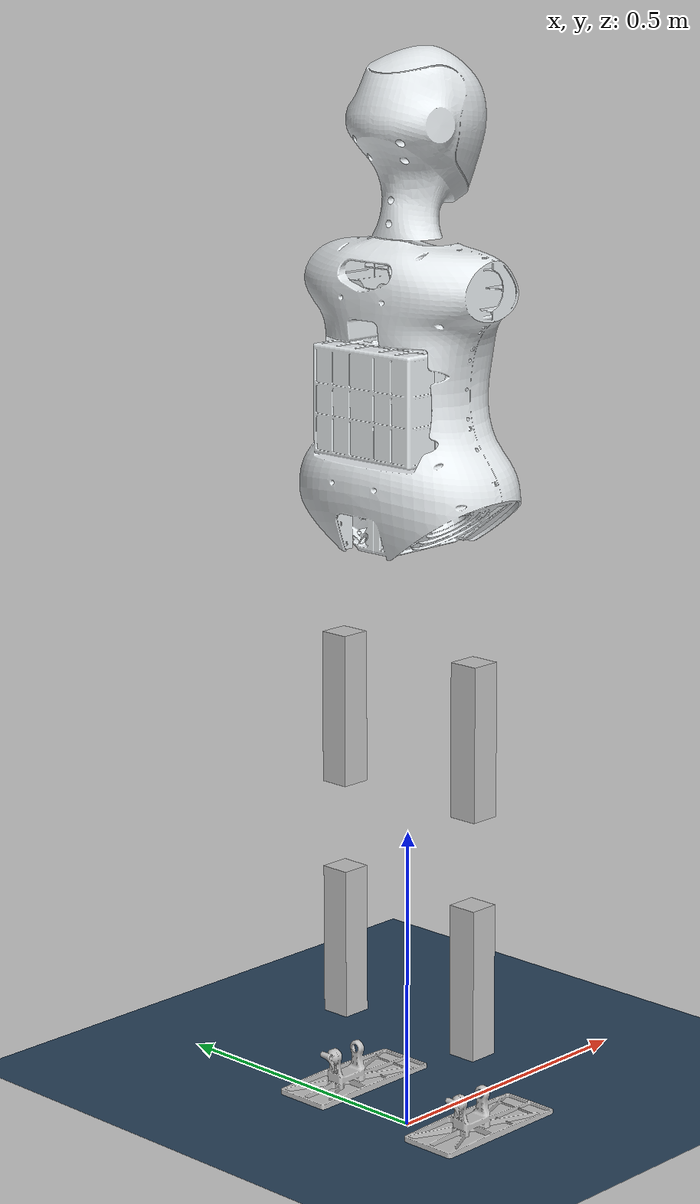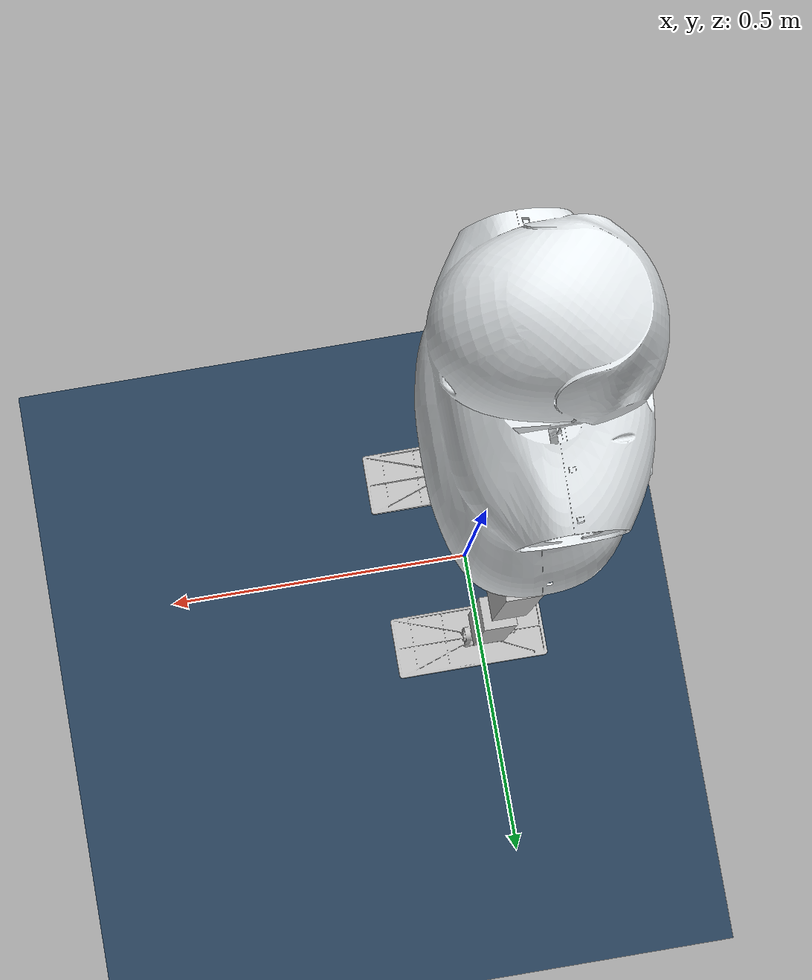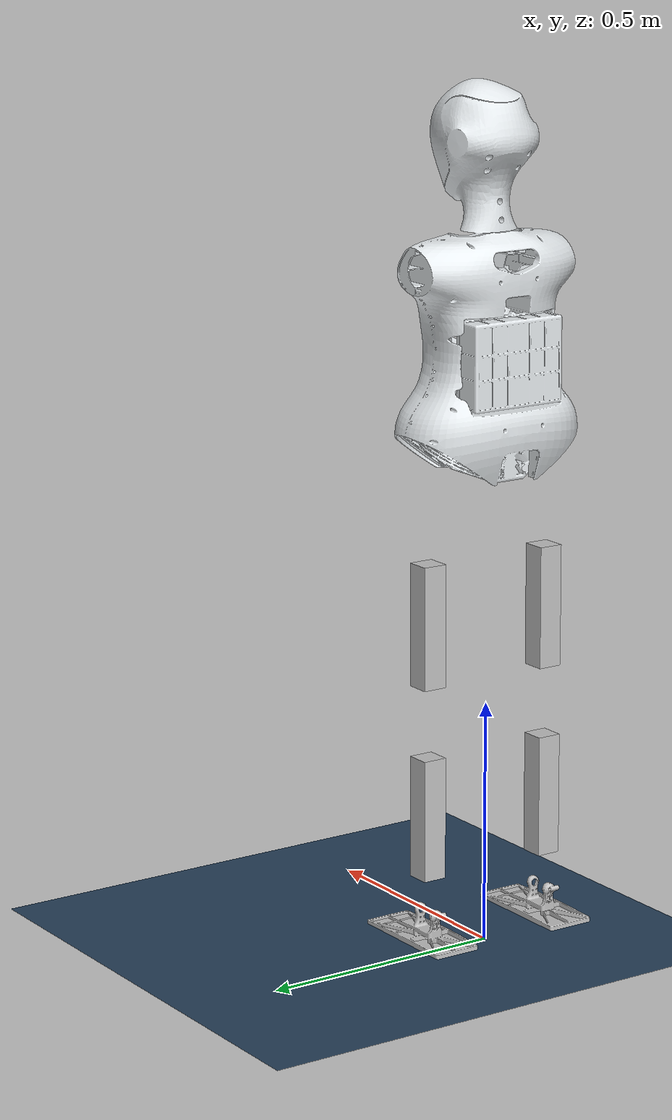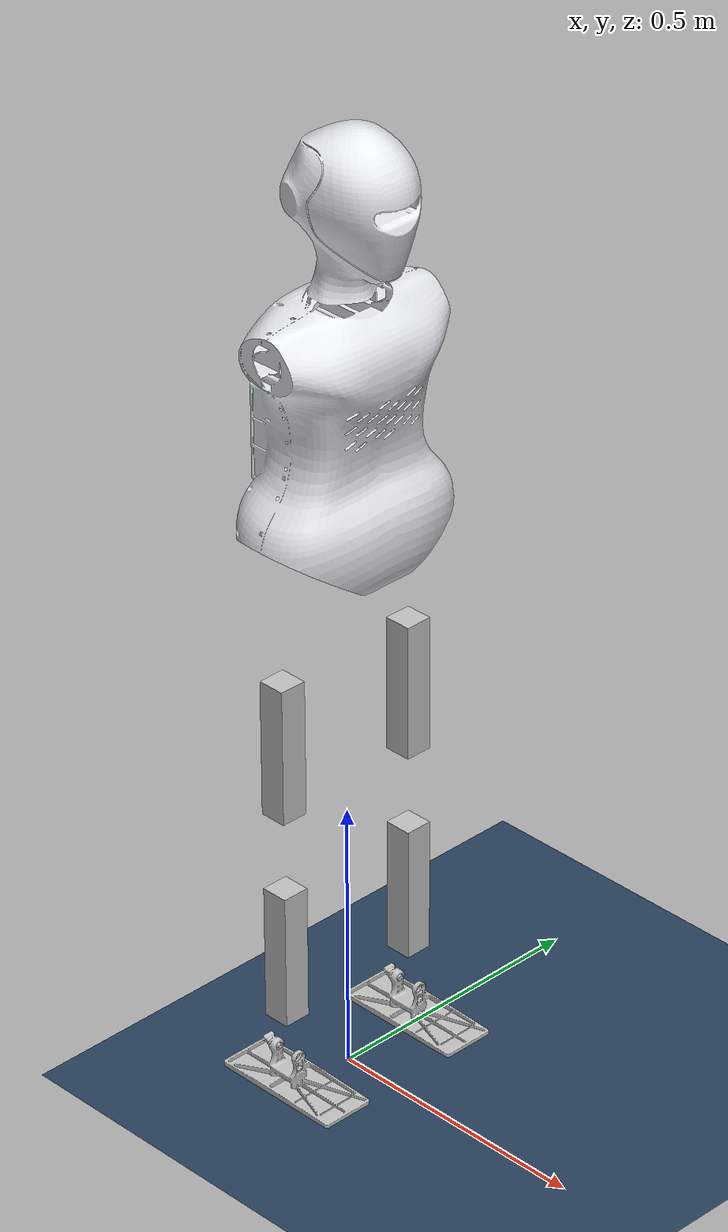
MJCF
<mujoco model="L1">
  <compiler angle="radian" meshdir="../meshes_L1/" />
  <option timestep="0.001" />

  <visual>
    <map force="0.1" zfar="30" />
    <rgba haze="0.15 0.25 0.35 1" />
    <global offwidth="2560" offheight="1440" elevation="-20" azimuth="120" />
  </visual>

  <statistic center="0 0 0.7" />
  <compiler angle="radian" autolimits="true" />

  <asset>
    <texture type="skybox" builtin="gradient" rgb1=".3 .5 .7" rgb2="0 0 0" width="32" height="512" />
    <texture name="body" type="cube" builtin="flat" mark="cross" width="128" height="128"
      rgb1="0.8 0.6 0.4" rgb2="0.8 0.6 0.4" markrgb="1 1 1" random="0.01" />
    <material name="body" texture="body" texuniform="true" rgba="0.8 0.6 .4 1" />
    <texture name="grid" type="2d" builtin="checker" width="512" height="512" rgb1=".1 .2 .3"
      rgb2=".2 .3 .4" />
    <material name="grid" texture="grid" texrepeat="1 1" texuniform="true" reflectance=".2" />
  </asset>

  <asset>
    <mesh name="base_link" file="base_link.STL" />
    <mesh name="LeftLeg_Link_06" file="LL6.STL" />
    <mesh name="RightLeg_Link_06" file="LR6.STL" />
  </asset>
  <worldbody>
    <geom name="floor" size="0 0 .05" type="plane" material="grid" condim="3" contype="3" conaffinity="3" solref="0.0002 0.1"/>
    <light name="spotlight" mode="targetbodycom" target="base_link" diffuse=".8 .8 .8" specular="0.3 0.3 0.3" pos="0 -6 4" cutoff="30"/>

    <body name="base_link" pos="0 0 1.1">
      <inertial pos="-0.00059405 -0.00012115 0.100099" quat="0.99831 0.000331026 0.0579693 -0.00404277"
        mass="11.0685" diaginertia="0.582951 0.537578 0.0953701"/>
      <light name="top" pos="0 0 2" mode="trackcom" />
      <camera name="back" pos="-3 0 1" xyaxes="0 -1 0 1 0 2" mode="trackcom" />
      <camera name="side" pos="0 -3 1" xyaxes="1 0 0 0 1 2" mode="trackcom" />
      <freejoint name="root" />
      <geom type="mesh" rgba="0.898039 0.917647 0.929412 1" mesh="base_link" contype="0"
        conaffinity="0" solimp=".9 .99 .003" />
      <site name='imu' size='0.01' pos='0.0 0 0.0' />

      <body name="leg_l1_link" pos="0 0.090386 -0.091358">
        <inertial pos="0.00402267 0.0229258 -0.0327414" quat="0.189769 0.681166 0.449136 0.546148"
          mass="0.337583" diaginertia="0.0010967 0.00076856 0.000568251"/>
        <joint name="leg_l1_joint" pos="0 0 0" axis="0 -0.57358 0.81915" limited="true" range="-1.815 1.728" />
        <body name="leg_l2_link" pos="0 0.049614 -0.070857">
          <inertial pos="0.00639226 9.576e-05 -0.0033657" quat="0.9972 0.00211166 0.0747515 -0.000227369"
            mass="2.05978" diaginertia="0.00332488 0.00275554 0.0023486"/>
          <joint name="leg_l2_joint" pos="0 0 0" axis="1 0 0" limited="true" range="-1.134 1.309" />
          <body name="leg_l3_link" pos="0 0 -0.075">
            <inertial pos="0.00302429 0.00846589 -0.127734" quat="0.939571 -0.00709148 -0.0359986 0.340383"
              mass="5.34674" diaginertia="0.0595886 0.0589714 0.0102521"/>
            <joint name="leg_l3_joint" pos="0 0 0" axis="0 0 1" limited="true" range="-1.396 1.396" />
            <geom size="0.025 0.025 0.125" pos="0 0 -0.18" type="box" rgba="0.75294 0.75294 0.75294 1"/>
            <body name="leg_l4_link" pos="0 0 -0.375">
              <inertial pos="-0.00054298 -5.372e-05 -0.159495" quat="0.762608 0.00275954 0.00364869 0.646844"
                mass="2.64088" diaginertia="0.0335491 0.0330326 0.00261633"/>
              <joint name="leg_l4_joint" pos="0 0 0" axis="0 1 0" limited="true" range="0 2.443" />
              <geom size="0.025 0.025 0.125" pos="0 0 -0.2" type="box" rgba="0.75294 0.75294 0.75294 1"/>
              <body name="leg_l5_link" pos="0 0 -0.4">
                <inertial pos="0 0 0" quat="0.707107 0.707107 0 0"
                  mass="0.0349403" diaginertia="5.53e-06 3.98e-06 3.79e-06"/>
                <joint name="leg_l5_joint" pos="0 0 0" axis="0 1 0" limited="true" range="-1.047 0.523" />
                <body name="leg_l6_link">
                  <inertial pos="0.0117187 0 -0.0463114" quat="-1.30199e-06 0.722937 1.24432e-06 0.690914"
                    mass="0.789063" diaginertia="0.00397665 0.00361695 0.000843517"/>
                  <joint name="leg_l6_joint" pos="0 0 0" axis="1 0 0" limited="true" range="-0.611 0.611" />
                  <geom type="mesh" rgba="0.75294 0.75294 0.75294 1" mesh="LeftLeg_Link_06"/>
                </body>
              </body>
            </body>
          </body>
        </body>
      </body>
      <body name="leg_r1_link" pos="0 -0.090386 -0.091358">
        <inertial pos="0.00390365 -0.0231017 -0.0329926" quat="0.542016 0.454116 0.682876 0.183514"
          mass="0.344413" diaginertia="0.00112457 0.000793277 0.000573665"/>
        <joint name="leg_r1_joint" pos="0 0 0" axis="0 0.57358 0.81915" limited="true" range="-1.728 1.815" />
        <body name="leg_r2_link" pos="0 -0.049614 -0.070857">
          <inertial pos="0.00639226 9.576e-05 -0.0033657" quat="0.9972 0.00211166 0.0747515 -0.000227369"
            mass="2.05978" diaginertia="0.00332488 0.00275554 0.0023486"/>
          <joint name="leg_r2_joint" pos="0 0 0" axis="1 0 0" limited="true" range="-1.309 1.134" />
          <body name="leg_r3_link" pos="0 0 -0.075">
            <inertial pos="0.00397633 -0.00860638 -0.128128" quat="0.940183 0.00473165 -0.0335944 -0.338977"
              mass="5.40515" diaginertia="0.0607775 0.0601185 0.0104193"/>
            <joint name="leg_r3_joint" pos="0 0 0" axis="0 0 1" limited="true" range="-1.396 1.396" />
            <geom size="0.025 0.025 0.125" pos="0 0 -0.18" type="box" rgba="0.75294 0.75294 0.75294 1"/>
            <body name="leg_r4_link" pos="0 0 -0.375">
              <inertial pos="-0.00074804 4.31e-06 -0.157944" quat="0.65366 0.00589719 0.0031342 0.756758"
                mass="2.64058" diaginertia="0.0320163 0.0313901 0.00273184"/>
              <joint name="leg_r4_joint" pos="0 0 0" axis="0 1 0" limited="true" range="0 2.443" />
              <geom size="0.025 0.025 0.125" pos="0 0 -0.2" type="box" rgba="0.75294 0.75294 0.75294 1"/>
              <body name="leg_r5_link" pos="0 0 -0.4">
                <inertial pos="0 0 0" quat="0.707107 0.707107 0 0"
                  mass="0.0349403" diaginertia="5.53e-06 3.98e-06 3.79e-06"/>
                <joint name="leg_r5_joint" pos="0 0 0" axis="0 1 0" limited="true" range="-1.047 0.523" />
                <body name="leg_r6_link">
                  <inertial pos="0.0117187 0 -0.0463114" quat="-1.30199e-06 0.722937 1.24432e-06 0.690914"
                    mass="0.789063" diaginertia="0.00397665 0.00361695 0.000843517"/>
                  <joint name="leg_r6_joint" pos="0 0 0" axis="1 0 0" limited="true" range="-0.611 0.611" />
                  <geom type="mesh" rgba="0.75294 0.75294 0.75294 1" mesh="RightLeg_Link_06" />
                </body>
              </body>
            </body>
          </body>
        </body>
      </body>
    </body>
  </worldbody>
  <actuator>
    <motor name="leg_l1_joint" joint="leg_l1_joint" gear="1" ctrllimited="true"
      ctrlrange="-200 200" />
    <motor name="leg_l2_joint" joint="leg_l2_joint" gear="1" ctrllimited="true"
      ctrlrange="-200 200" />
    <motor name="leg_l3_joint" joint="leg_l3_joint" gear="1" ctrllimited="true"
      ctrlrange="-200 200" />
    <motor name="leg_l4_joint" joint="leg_l4_joint" gear="1" ctrllimited="true"
      ctrlrange="-200 200" />
    <motor name="leg_l5_joint" joint="leg_l5_joint" gear="1" ctrllimited="true"
      ctrlrange="-200 200" />
    <motor name="leg_l6_joint" joint="leg_l6_joint" gear="1" ctrllimited="true"
      ctrlrange="-200 200" />
    <motor name="leg_r1_joint" joint="leg_r1_joint" gear="1" ctrllimited="true"
      ctrlrange="-200 200" />
    <motor name="leg_r2_joint" joint="leg_r2_joint" gear="1" ctrllimited="true"
      ctrlrange="-200 200" />
    <motor name="leg_r3_joint" joint="leg_r3_joint" gear="1" ctrllimited="true"
      ctrlrange="-200 200" />
    <motor name="leg_r4_joint" joint="leg_r4_joint" gear="1" ctrllimited="true"
      ctrlrange="-200 200" />
    <motor name="leg_r5_joint" joint="leg_r5_joint" gear="1" ctrllimited="true"
      ctrlrange="-200 200" />
    <motor name="leg_r6_joint" joint="leg_r6_joint" gear="1" ctrllimited="true"
      ctrlrange="-200 200" />
  </actuator>

  <sensor>
    <actuatorpos name='leg_l1_joint_p' actuator='leg_l1_joint' user='13' />
    <actuatorpos name='leg_l2_joint_p' actuator='leg_l2_joint' user='13' />
    <actuatorpos name='leg_l3_joint_p' actuator='leg_l3_joint' user='13' />
    <actuatorpos name='leg_l4_joint_p' actuator='leg_l4_joint' user='13' />
    <actuatorpos name='leg_l5_joint_p' actuator='leg_l5_joint' user='13' />
    <actuatorpos name='leg_l6_joint_p' actuator='leg_l6_joint' user='13' />
    <actuatorpos name='leg_r1_joint_p' actuator='leg_r1_joint' user='13' />
    <actuatorpos name='leg_r2_joint_p' actuator='leg_r2_joint' user='13' />
    <actuatorpos name='leg_r3_joint_p' actuator='leg_r3_joint' user='13' />
    <actuatorpos name='leg_r4_joint_p' actuator='leg_r4_joint' user='13' />
    <actuatorpos name='leg_r5_joint_p' actuator='leg_r5_joint' user='13' />
    <actuatorpos name='leg_r6_joint_p' actuator='leg_r6_joint' user='13' />

    <actuatorvel name='leg_l1_joint_v' actuator='leg_l1_joint' user='13' />
    <actuatorvel name='leg_l2_joint_v' actuator='leg_l2_joint' user='13' />
    <actuatorvel name='leg_l3_joint_v' actuator='leg_l3_joint' user='13' />
    <actuatorvel name='leg_l4_joint_v' actuator='leg_l4_joint' user='13' />
    <actuatorvel name='leg_l5_joint_v' actuator='leg_l5_joint' user='13' />
    <actuatorvel name='leg_l6_joint_v' actuator='leg_l6_joint' user='13' />
    <actuatorvel name='leg_r1_joint_v' actuator='leg_r1_joint' user='13' />
    <actuatorvel name='leg_r2_joint_v' actuator='leg_r2_joint' user='13' />
    <actuatorvel name='leg_r3_joint_v' actuator='leg_r3_joint' user='13' />
    <actuatorpos name='leg_r4_joint_v' actuator='leg_r4_joint' user='13' />
    <actuatorvel name='leg_r5_joint_v' actuator='leg_r5_joint' user='13' />
    <actuatorvel name='leg_r6_joint_v' actuator='leg_r6_joint' user='13' />

    <actuatorfrc name='leg_l1_joint_f' actuator='leg_l1_joint' user='13' noise='1e-3' />
    <actuatorfrc name='leg_l2_joint_f' actuator='leg_l2_joint' user='13' noise='1e-3' />
    <actuatorfrc name='leg_l3_joint_f' actuator='leg_l3_joint' user='13' />
    <actuatorfrc name='leg_l4_joint_f' actuator='leg_l4_joint' user='13' noise='1e-3' />
    <actuatorfrc name='leg_l5_joint_f' actuator='leg_l5_joint' user='13' noise='1e-3' />
    <actuatorfrc name='leg_l6_joint_f' actuator='leg_l6_joint' user='13' noise='1e-3' />
    <actuatorfrc name='leg_r1_joint_f' actuator='leg_r1_joint' user='13' noise='1e-3' />
    <actuatorfrc name='leg_r2_joint_f' actuator='leg_r2_joint' user='13' noise='1e-3' />
    <actuatorfrc name='leg_r3_joint_f' actuator='leg_r3_joint' user='13' />
    <actuatorpos name='leg_r4_joint_f' actuator='leg_r4_joint' user='13' noise='1e-3' />
    <actuatorfrc name='leg_r5_joint_f' actuator='leg_r5_joint' user='13' noise='1e-3' />
    <actuatorfrc name='leg_r6_joint_f' actuator='leg_r6_joint' user='13' noise='1e-3' />

    <framequat name='orientation' objtype='site' noise='0.001' objname='imu' />
    <framepos name='position' objtype='site' noise='0.001' objname='imu' />
    <gyro name='angular-velocity' site='imu' noise='0.005' cutoff='34.9' />
    <velocimeter name='linear-velocity' site='imu' noise='0.001' cutoff='30' />
    <accelerometer name='linear-acceleration' site='imu' noise='0.005' cutoff='157' />
    <magnetometer name='magnetometer' site='imu' />

  </sensor>
</mujoco>
